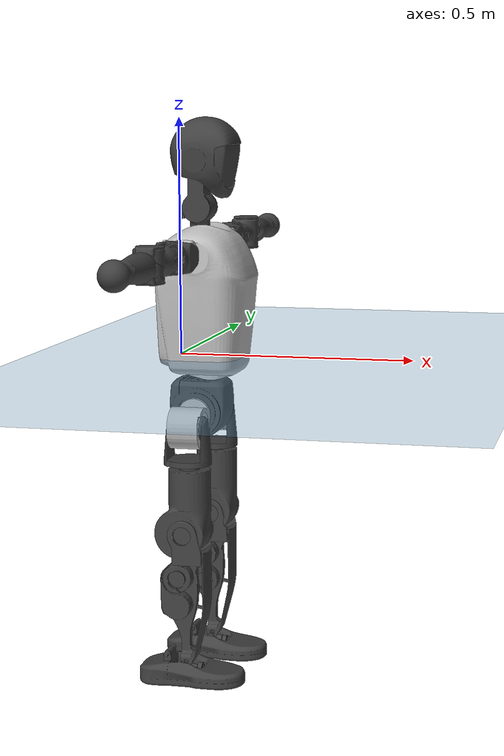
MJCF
<mujoco model="T1">
  <compiler angle="radian" assetdir="assets" balanceinertia="true" inertiafromgeom="false"/>

  <option timestep="0.005" density="1.2" viscosity="2e-05"/>

  <size nkey="1"/>

  <visual>
    <quality shadowsize="8192"/>
    <map shadowclip="0.5"/>
  </visual>

  <default>
    <default class="/">
      <joint armature="0.01" damping="0.01" frictionloss="0.1"/>
      <geom contype="0" conaffinity="0" group="1" solref="-1000 -80"/>
      <site size="0.01 0.005 0.005" group="5"/>
      <general forcelimited="true" biastype="affine" gainprm="25" biasprm="0 -25 -0.6"/>
      <default class="t1">
        <geom rgba="0.25 0.25 0.25 1"/>
        <default class="visual">
          <geom type="mesh" group="2"/>
        </default>
        <default class="collision">
          <geom group="3"/>
        </default>
        <default class="foot">
          <geom size="0.1115 0.05 0.015" type="box" condim="6" group="4" priority="1" solimp="0.015 1 0.015"/>
        </default>
        <default class="reward_collision_sphere">
          <geom group="5" rgba="1 0 0 1"/>
        </default>
      </default>
    </default>
  </default>

  <asset>
    <texture type="skybox" colorspace="auto" name="//unnamed_texture_0" builtin="gradient" rgb1="0.95 0.95 0.95" rgb2="0.95 0.95 0.95" width="100" height="600"/>
    <texture type="2d" colorspace="auto" name="texplane" builtin="checker" rgb1="0.345 0.575 0.748" rgb2="0.345 0.575 0.748" markrgb="1 1 1" width="512" height="512"/>
    <material name="MatPlane" class="/" texture="texplane" texuniform="true" texrepeat="2 2" specular="0.9"/>
    <mesh name="Trunk" class="/" file="Trunk.stl"/>
    <mesh name="H1" class="/" file="H1.stl"/>
    <mesh name="H2" class="/" file="H2.stl"/>
    <mesh name="AL1" class="/" file="AL1.stl"/>
    <mesh name="AL2" class="/" file="AL2.stl"/>
    <mesh name="AL3" class="/" file="AL3.stl"/>
    <mesh name="left_hand_link" class="/" file="left_hand_link.stl"/>
    <mesh name="AR1" class="/" file="AR1.stl"/>
    <mesh name="AR2" class="/" file="AR2.stl"/>
    <mesh name="AR3" class="/" file="AR3.stl"/>
    <mesh name="right_hand_link" class="/" file="right_hand_link.stl"/>
    <mesh name="Waist" class="/" file="Waist.stl"/>
    <mesh name="Hip_Pitch_Left" class="/" file="Hip_Pitch_Left.stl"/>
    <mesh name="Hip_Roll_Left" class="/" file="Hip_Roll_Left.stl"/>
    <mesh name="Hip_Yaw_Left" class="/" file="Hip_Yaw_Left.stl"/>
    <mesh name="Shank_Left" class="/" file="Shank_Left.stl"/>
    <mesh name="Ankle_Cross_Left" class="/" file="Ankle_Cross_Left.stl"/>
    <mesh name="left_foot_link" class="/" file="left_foot_link.stl"/>
    <mesh name="Hip_Pitch_Right" class="/" file="Hip_Pitch_Right.stl"/>
    <mesh name="Hip_Roll_Right" class="/" file="Hip_Roll_Right.stl"/>
    <mesh name="Hip_Yaw_Right" class="/" file="Hip_Yaw_Right.stl"/>
    <mesh name="Shank_Right" class="/" file="Shank_Right.stl"/>
    <mesh name="Ankle_Cross_Right" class="/" file="Ankle_Cross_Right.stl"/>
    <mesh name="right_foot_link" class="/" file="right_foot_link.stl"/>
  </asset>

  <worldbody>
    <geom name="floor" class="/" size="100 100 0.125" type="plane" group="0" material="MatPlane"/>
    <light name="toplight_shadow" class="/" pos="0 0 5" dir="0.0990148 0.0990148 -0.990148" type="directional" ambient="0.04 0.04 0.04" diffuse="0.55 0.55 0.55" specular="0.12 0.12 0.12"/>
    <light name="toplight_fill" class="/" pos="0 0 5" dir="0.0990148 0.0990148 -0.990148" type="directional" castshadow="false" ambient="0.04 0.04 0.04" diffuse="0.3 0.3 0.3" specular="0.08 0.08 0.08"/>
    <body name="trunk" childclass="t1" pos="0.00278675 0.000390326 -0.000124092" quat="1 8.08668e-05 0.000191406 -0.000138581">
      <inertial pos="0.0374393 -0.000884585 0.106179" quat="0.999962 0.00331245 -0.00699199 0.00395" mass="8.95586" diaginertia="0.0142543 0.0735269 0.0650047"/>
      <joint name="//unnamed_joint_0" type="free" armature="0" damping="0" frictionloss="0"/>
      <geom name="//unnamed_geom_1" class="visual" rgba="0.76 0.76 0.76 1" mesh="Trunk"/>
      <geom name="//unnamed_geom_2" class="collision" size="0.0677132 0.0902843 0.135426" pos="0.0411145 0 0.123817" type="box"/>
      <geom name="//unnamed_geom_3" class="reward_collision_sphere" size="0.103827" pos="0.0411145 0 0.103181"/>
      <geom name="//unnamed_geom_4" class="reward_collision_sphere" size="0.0135426" pos="0.0411145 0.084276 0"/>
      <geom name="//unnamed_geom_5" class="reward_collision_sphere" size="0.0135426" pos="0.0411145 -0.084276 0"/>
      <geom name="//unnamed_geom_6" class="reward_collision_sphere" size="0.0135426" pos="0.0411145 0.106089 0.185725"/>
      <geom name="//unnamed_geom_7" class="reward_collision_sphere" size="0.0135426" pos="0.0411145 -0.106089 0.185725"/>
      <site name="imu" pos="-0.0105225 -0.00936932 0.0141478" size="0.00902843"/>
      <camera name="track" pos="0 -1.98296 0" quat="0.707107 0.707107 0 0" mode="trackcom"/>
      <camera name="ego_camera" pos="0.0835994 0 0.433358" quat="-0.5 -0.5 0.5 0.5"/>
      <body name="H1" pos="0.0412053 -0.00216022 0.249091" quat="1 0.000127672 -0.000193502 2.87522e-05">
        <inertial pos="-0.00357936 -0.00176355 0.0569873" quat="0.761016 -0.0223134 0.00316018 0.648342" mass="0.337783" diaginertia="3.62575e-05 0.000209362 0.000174613"/>
        <joint name="AAHead_yaw" pos="0 0 0" axis="-0.0058954 -0.0101434 0.999931" stiffness="6.68311e-05" range="-1.55916 1.59129" armature="0.0100123" damping="0.0083941" frictionloss="0.101534"/>
        <geom name="//unnamed_geom_8" class="visual" mesh="H1"/>
        <body name="H2" pos="-6.58212e-06 -9.84281e-05 0.0637505" quat="0.999999 0.00119687 0.000426919 -0.000509955">
          <inertial pos="0.003968 -0.000591553 0.101651" quat="0.988584 0.105473 -0.0737404 -0.0783503" mass="0.476593" diaginertia="0.000298947 0.00183628 0.00205982"/>
          <joint name="Head_pitch" pos="0 0 0" axis="0.000236777 -1 -6.82933e-05" range="-1.21381 0.351886" armature="0.010185" damping="0.00461592" frictionloss="0.0892735"/>
          <geom name="//unnamed_geom_9" class="visual" mesh="H2"/>
          <geom name="//unnamed_geom_10" class="collision" size="0.0722274" pos="0.00685241 0 0.113499"/>
          <geom name="//unnamed_geom_11" class="reward_collision_sphere" size="0.0812559" pos="0.0137048 0 0.103181"/>
        </body>
      </body>
      <body name="AL1" pos="0.0429009 0.107972 0.228957" quat="1 6.4187e-05 0.000559573 0.000173708">
        <inertial pos="-0.00214237 0.0466795 -0.00275785" quat="0.505104 0.495431 -0.503323 0.496069" mass="0.413674" diaginertia="0.000220056 0.00131877 0.000353401"/>
        <joint name="Left_Shoulder_Pitch" pos="0 0 0" axis="0.00631702 0.999907 -0.0120599" stiffness="0.0137702" range="-3.26538 1.22293" armature="0.0102052" damping="0.0128743" frictionloss="0.0775211"/>
        <geom name="//unnamed_geom_12" class="visual" rgba="0.76 0.76 0.76 1" mesh="AL1"/>
        <body name="AL2" pos="0.000282506 0.0497614 0.0030683" quat="1 0.000426243 -3.76217e-05 -0.000880805">
          <inertial pos="0.00201352 0.0372909 0.00229792" quat="0.488054 0.511476 -0.487736 0.512161" mass="0.116797" diaginertia="6.44347e-05 0.000347073 0.000205118"/>
          <joint name="Left_Shoulder_Roll" pos="0 0 0" axis="-0.999989 -0.0046265 -0.000785716" range="-1.51657 1.68814" armature="0.00886732" damping="0.0147507" frictionloss="0.0949312"/>
          <geom name="//unnamed_geom_13" class="visual" mesh="AL2"/>
          <body name="AL3" pos="0.00249688 0.0605516 -8.59771e-05" quat="0.999999 0.000384064 0.00106898 -0.00100838">
            <inertial pos="-0.000994054 0.0845441 0.00270125" quat="0.713588 0.700504 0.000500473 -0.00925246" mass="0.762238" diaginertia="0.00202309 0.0122981 0.00073199"/>
            <joint name="Left_Elbow_Pitch" pos="0 0 0" axis="0.00036406 -0.999985 -0.00542475" range="-2.25144 2.32131" armature="0.00781496" damping="0" frictionloss="0.0905654"/>
            <geom name="//unnamed_geom_14" class="visual" mesh="AL3"/>
            <geom name="//unnamed_geom_15" class="collision" size="0.0270853 0.0677132" pos="0 0.0495741 0" quat="0.707105 0.707108 0 0" type="cylinder"/>
            <geom name="//unnamed_geom_16" class="reward_collision_sphere" size="0.0325023"/>
            <body name="left_hand_link" pos="0.00256241 0.14606 0.00127322" quat="0.999999 0.000456421 0.000327231 0.00129006">
              <inertial pos="0.00128492 0.106108 0.00130534" quat="0.711747 0.702423 0.0041571 -0.00112756" mass="0.235397" diaginertia="0.00125876 0.00789609 0.000247241"/>
              <joint name="Left_Elbow_Yaw" pos="0 0 0" axis="-0.00923336 -0.00345194 0.999951" stiffness="0.00459347" range="-2.39332 -0.0539247" armature="0.0103797" damping="0.0265819" frictionloss="0.102797"/>
              <geom name="//unnamed_geom_17" class="visual" mesh="left_hand_link"/>
              <geom name="//unnamed_geom_18" class="collision" size="0.0270853 0.0789988" pos="0 0.128893 0" quat="0.707105 0.707108 0 0" type="cylinder"/>
              <geom name="//unnamed_geom_19" class="reward_collision_sphere" size="0.0451421"/>
              <geom name="//unnamed_geom_20" class="reward_collision_sphere" size="0.0315995" pos="0 0.109063 0"/>
              <geom name="//unnamed_geom_21" class="reward_collision_sphere" size="0.0315995" pos="0 0.213169 0"/>
            </body>
          </body>
        </body>
      </body>
      <body name="AR1" pos="0.0384144 -0.107138 0.224854" quat="0.999999 -0.000662487 0.000832058 -0.00109754">
        <inertial pos="0.00132421 -0.0440414 -0.000327829" quat="0.504429 0.495086 -0.504715 0.495686" mass="0.394154" diaginertia="0.000202812 0.00122779 0.000343815"/>
        <joint name="Right_Shoulder_Pitch" pos="0 0 0" axis="0.00349317 -0.999989 -0.00316499" stiffness="0.0144856" range="-1.24291 3.32722" armature="0.0101686" damping="0.00140686" frictionloss="0.0785173"/>
        <geom name="//unnamed_geom_22" class="visual" rgba="0.76 0.76 0.76 1" mesh="AR1"/>
        <body name="AR2" pos="-0.000483468 -0.0433644 -0.0024802" quat="1 0.000135242 -9.64834e-05 0.000527706">
          <inertial pos="-0.000110463 -0.0348487 -0.00191969" quat="0.510478 0.484322 -0.514943 0.489569" mass="0.122265" diaginertia="6.26279e-05 0.000334324 0.000218606"/>
          <joint name="Right_Shoulder_Roll" pos="0 0 0" axis="-0.999748 0.0187526 -0.0123189" range="-1.70642 1.58814" armature="0.00985842" damping="0.0179838" frictionloss="0.0930533"/>
          <geom name="//unnamed_geom_23" class="visual" mesh="AR2"/>
          <body name="AR3" pos="0.000492397 -0.0575237 0.000834207" quat="1 -0.000114852 -0.000382249 8.91622e-05">
            <inertial pos="-0.0024654 -0.0834122 7.24609e-05" quat="0.704881 0.709231 -0.0108027 -0.00420495" mass="0.755151" diaginertia="0.00196619 0.012338 0.000748285"/>
            <joint name="Right_Elbow_Pitch" pos="0 0 0" axis="-0.00559835 0.999934 0.00998807" range="-2.27111 2.21182" armature="0.00883294" damping="0.00563166" frictionloss="0.0804599"/>
            <geom name="//unnamed_geom_24" class="visual" mesh="AR3"/>
            <geom name="//unnamed_geom_25" class="collision" size="0.0270853 0.0677132" pos="0 -0.0495741 0" quat="0.707105 0.707108 0 0" type="cylinder"/>
            <geom name="//unnamed_geom_26" class="reward_collision_sphere" size="0.0325023"/>
            <body name="right_hand_link" pos="0.00169747 -0.143077 -0.00074409" quat="1 0.000204722 -3.7586e-05 -0.000118415">
              <inertial pos="-0.0010547 -0.108043 0.00328645" quat="0.706793 0.70742 0.000788133 -0.000156773" mass="0.242737" diaginertia="0.00124511 0.0076371 0.000247761"/>
              <joint name="Right_Elbow_Yaw" pos="0 0 0" axis="-0.000451826 -0.000596472 1" stiffness="0.0113436" range="0.0541006 2.4144" armature="0.00910703" damping="0" frictionloss="0.0795452"/>
              <geom name="//unnamed_geom_27" class="visual" mesh="right_hand_link"/>
              <geom name="//unnamed_geom_28" class="collision" size="0.0270853 0.0789988" pos="0 -0.128893 0" quat="0.707105 0.707108 0 0" type="cylinder"/>
              <geom name="//unnamed_geom_29" class="reward_collision_sphere" size="0.0451421"/>
              <geom name="//unnamed_geom_30" class="reward_collision_sphere" size="0.0315995" pos="0 -0.109063 0"/>
              <geom name="//unnamed_geom_31" class="reward_collision_sphere" size="0.0315995" pos="0 -0.213169 0"/>
            </body>
          </body>
        </body>
      </body>
      <body name="Waist" pos="0.0421344 -0.0014397 -0.118273" quat="1 0.000146292 -6.59518e-05 0.000268493">
        <inertial pos="0.00226752 -0.000558333 0.00817017" quat="0.982062 -0.00903112 -0.188269 0.00530308" mass="1.84503" diaginertia="0.000831857 0.00510513 0.00568519"/>
        <joint name="Waist" pos="0 0 0" axis="-0.011687 -0.0105571 0.999876" stiffness="0.00279375" range="-1.62239 1.51627" armature="0.00925116" damping="0.0159629" frictionloss="0.0794808"/>
        <geom name="//unnamed_geom_32" class="visual" mesh="Waist"/>
        <body name="Hip_Pitch_Left" pos="-0.000463283 0.104425 -0.00129768" quat="1 2.19883e-05 0.000414852 0.000258935">
          <inertial pos="0.00151453 -0.010269 -0.0177078" quat="0.976901 0.212991 0.0162272 -0.00604205" mass="0.762047" diaginertia="0.000266786 0.00146345 0.00152458"/>
          <joint name="Left_Hip_Pitch" pos="0 0 0" axis="-0.0121008 0.999927 0.000121724" stiffness="0.0111745" range="-1.82277 1.56714" armature="0.0101566" damping="0.021857" frictionloss="0.0900289"/>
          <geom name="//unnamed_geom_33" class="visual" rgba="0.76 0.76 0.76 1" mesh="Hip_Pitch_Left"/>
          <body name="Hip_Roll_Left" pos="0.00237844 -0.00173724 -0.0218345" quat="0.999999 -0.000262748 0.00022606 -0.00127598">
            <inertial pos="0.00414923 -0.00076583 -0.0552872" quat="0.708706 -0.00633545 -0.00540421 0.705454" mass="0.267189" diaginertia="0.000252053 0.00141752 0.000582969"/>
            <joint name="Left_Hip_Roll" pos="0 0 0" axis="-0.999912 0.00539627 -0.0120796" stiffness="0.00437482" range="-1.52512 0.226347" armature="0.00785543" damping="0" frictionloss="0.0825291"/>
            <geom name="//unnamed_geom_34" class="visual" mesh="Hip_Roll_Left"/>
            <geom name="//unnamed_geom_35" class="reward_collision_sphere" size="0.0496564"/>
            <body name="Hip_Yaw_Left" pos="0.00309402 -0.00302765 -0.082602" quat="0.999999 -0.000105494 -0.00046921 0.0011575">
              <inertial pos="-0.00667863 -0.00129046 -0.0932836" quat="0.696296 -0.0350672 -0.0311181 0.716222" mass="1.61592" diaginertia="0.00402395 0.0243382 0.00301975"/>
              <joint name="Left_Hip_Yaw" pos="0 0 0" axis="-0.00478607 -0.00513837 -0.999975" range="-0.967481 1.05918" armature="0.00906361" damping="0.0063564" frictionloss="0.102543"/>
              <geom name="//unnamed_geom_36" class="visual" mesh="Hip_Yaw_Left"/>
              <geom name="//unnamed_geom_37" class="collision" size="0.0451421 0.0722274" type="cylinder"/>
              <body name="Shank_Left" pos="-0.00948764 0.00220318 -0.140429" quat="1 0.000126135 -1.68328e-05 -9.54361e-05">
                <inertial pos="-0.00596565 0.00119644 -0.127362" quat="0.996977 -0.000788924 -0.0293879 0.0719221" mass="1.22662" diaginertia="0.00522244 0.0335515 0.00224238"/>
                <joint name="Left_Knee_Pitch" pos="0 0 0" axis="0.00312576 0.999913 0.0128016" range="0.0062263 2.3978" armature="0.00772934" damping="0.0123422" frictionloss="0.099662"/>
                <geom name="//unnamed_geom_38" class="visual" mesh="Shank_Left"/>
                <geom name="//unnamed_geom_39" class="collision" size="0.0451421 0.0677132" pos="0 0 -0.123817" type="cylinder"/>
                <geom name="//unnamed_geom_40" class="reward_collision_sphere" size="0.0586848"/>
                <body name="Ankle_Cross_Left" pos="-0.0025911 -0.00130438 -0.287805" quat="1 8.18532e-05 -0.000338974 0.000356393">
                  <inertial pos="-0.0018952 -7.91661e-05 -0.00722922" quat="0.443196 0.554193 0.546946 0.444182" mass="0.055282" diaginertia="4.63937e-06 2.53824e-05 1.36307e-05"/>
                  <joint name="Left_Ankle_Pitch" pos="0 0 0" axis="-0.0125176 0.999921 -0.000915123" range="-0.866739 0.293405" armature="0.00990164" damping="0.00390312" frictionloss="0.0809138"/>
                  <geom name="//unnamed_geom_41" class="visual" mesh="Ankle_Cross_Left"/>
                  <body name="left_foot_link" pos="0.00148363 -0.0020875 -0.0148534" quat="1 -4.07097e-05 -3.72531e-05 -1.27365e-05">
                    <inertial pos="-0.00207106 0.00275142 -0.00932988" quat="0.00294029 0.622593 0.00221021 0.782537" mass="0.500013" diaginertia="0.000404389 0.00226088 0.00244091"/>
                    <joint name="Left_Ankle_Roll" pos="0 0 0" axis="-0.999998 0.000340669 0.00205781" range="-0.387647 0.396316" armature="0.00900301" damping="0.00642727" frictionloss="0.0940342"/>
                    <geom name="//unnamed_geom_42" class="visual" mesh="left_foot_link"/>
                    <geom name="left_foot" class="foot" size="0.0989676 0.0450946 0.0126082" pos="0.00685241 0 -0.0154771"/>
                    <geom name="//unnamed_geom_44" class="reward_collision_sphere" size="0.0469478" pos="0.00685241 0 -0.0154771"/>
                    <geom name="//unnamed_geom_45" class="reward_collision_sphere" size="0.0270853" pos="0.0650979 -0.0228041 -0.0154771"/>
                    <geom name="//unnamed_geom_46" class="reward_collision_sphere" size="0.0270853" pos="-0.0479669 -0.0228041 -0.0154771"/>
                    <site name="left_foot" class="foot" pos="0.00685241 0 -0.0154771" size="0.00902843"/>
                  </body>
                </body>
              </body>
            </body>
          </body>
        </body>
        <body name="Hip_Pitch_Right" pos="-0.0020174 -0.105356 -0.00260516" quat="1 0.000395697 -0.000244294 0.000668905">
          <inertial pos="0.00116709 0.0076361 -0.0212424" quat="0.97419 -0.225118 0.0162702 -0.00343817" mass="0.740797" diaginertia="0.000265705 0.00143984 0.00149821"/>
          <joint name="Right_Hip_Pitch" pos="0 0 0" axis="0.00812133 -0.999963 0.00265887" range="-1.59521 1.84022" armature="0.00849598" damping="0.0214359" frictionloss="0.0803678"/>
          <geom name="//unnamed_geom_47" class="visual" rgba="0.76 0.76 0.76 1" mesh="Hip_Pitch_Right"/>
          <body name="Hip_Roll_Right" pos="0.00192308 -0.000270327 -0.0197214" quat="1 8.96074e-06 0.000249829 0.000311041">
            <inertial pos="0.000367638 -0.00333244 -0.0526813" quat="0.707228 -0.00872821 -0.00306517 0.706925" mass="0.273536" diaginertia="0.000253474 0.00137296 0.000598194"/>
            <joint name="Right_Hip_Roll" pos="0 0 0" axis="-0.999944 0.0105522 -0.000483095" range="-0.194668 1.56717" armature="0.00765563" damping="0.00397979" frictionloss="0.0887873"/>
            <geom name="//unnamed_geom_48" class="visual" mesh="Hip_Roll_Right"/>
            <geom name="//unnamed_geom_49" class="reward_collision_sphere" size="0.0496564"/>
            <body name="Hip_Yaw_Right" pos="0.000257067 0.00165918 -0.0873744" quat="1 1.20593e-05 -0.000464903 -0.00077347">
              <inertial pos="-0.00212597 0.00180736 -0.0949271" quat="0.715496 -0.0384939 -0.0317226 0.696834" mass="1.59968" diaginertia="0.00392257 0.0236184 0.00299732"/>
              <joint name="Right_Hip_Yaw" pos="0 0 0" axis="0.00314696 0.0020262 -0.999993" range="-1.02256 1.01326" armature="0.00935072" damping="0.00731336" frictionloss="0.0900588"/>
              <geom name="//unnamed_geom_50" class="visual" mesh="Hip_Yaw_Right"/>
              <geom name="//unnamed_geom_51" class="collision" size="0.0451421 0.0722274" type="cylinder"/>
              <body name="Shank_Right" pos="-0.0066428 -0.00193517 -0.135635" quat="1 -0.000156094 9.47412e-05 0.000132328">
                <inertial pos="-0.00566048 0.000640507 -0.128948" quat="0.998737 -0.00731734 -0.0263869 -0.0421211" mass="1.35062" diaginertia="0.00509234 0.0320369 0.00221675"/>
                <joint name="Right_Knee_Pitch" pos="0 0 0" axis="-0.0136265 -0.999897 0.00449163" range="-2.39176 -0.00951384" armature="0.00919776" damping="0.0131492" frictionloss="0.0809227"/>
                <geom name="//unnamed_geom_52" class="visual" mesh="Shank_Right"/>
                <geom name="//unnamed_geom_53" class="collision" size="0.0451421 0.0677132" pos="0 0 -0.123817" type="cylinder"/>
                <geom name="//unnamed_geom_54" class="reward_collision_sphere" size="0.0586848"/>
                <body name="Ankle_Cross_Right" pos="-0.0003865 -0.000968988 -0.287208" quat="1 -0.000285953 -0.000288858 -4.35861e-05">
                  <inertial pos="-0.00310845 -0.00270353 -0.0076825" quat="0.442033 0.558616 0.549566 0.4365" mass="0.0533319" diaginertia="4.3613e-06 2.33136e-05 1.29265e-05"/>
                  <joint name="Right_Ankle_Pitch" pos="0 0 0" axis="-0.0122332 -0.99992 -0.00309755" range="-0.30263 0.871232" armature="0.0103313" damping="0.00193572" frictionloss="0.0917047"/>
                  <geom name="//unnamed_geom_55" class="visual" mesh="Ankle_Cross_Right"/>
                  <body name="right_foot_link" pos="0.00154767 -0.00104636 -0.00977058" quat="1 -3.12199e-05 2.57871e-05 3.59343e-06">
                    <inertial pos="-0.000155508 0.00124309 -0.00694361" quat="-0.0101664 0.62026 -0.00870085 0.784282" mass="0.506472" diaginertia="0.000421977 0.00232269 0.00258589"/>
                    <joint name="Right_Ankle_Roll" pos="0 0 0" axis="-1 -0.000464329 0.000274206" range="-0.432457 0.384733" armature="0.00921025" damping="0.0138034" frictionloss="0.0776602"/>
                    <geom name="//unnamed_geom_56" class="visual" mesh="right_foot_link"/>
                    <geom name="right_foot" class="foot" size="0.112604 0.0469351 0.0145713" pos="0.00685241 0 -0.0154771"/>
                    <geom name="//unnamed_geom_58" class="reward_collision_sphere" size="0.0361137"/>
                    <geom name="//unnamed_geom_59" class="reward_collision_sphere" size="0.0270853" pos="0.00685241 0 -0.0154771"/>
                    <geom name="//unnamed_geom_60" class="reward_collision_sphere" size="0.0270853" pos="0.0650979 0.0228041 -0.0154771"/>
                    <geom name="//unnamed_geom_61" class="reward_collision_sphere" size="0.0270853" pos="-0.0479669 0.0228041 -0.0154771"/>
                    <site name="right_foot" class="foot" pos="0.00685241 0 -0.0154771" size="0.00902843"/>
                  </body>
                </body>
              </body>
            </body>
          </body>
        </body>
      </body>
    </body>
  </worldbody>

  <contact>
    <pair class="/" geom1="floor" geom2="left_foot" name="//unnamed_contact_0"/>
    <pair class="/" geom1="floor" geom2="right_foot" name="//unnamed_contact_1"/>
  </contact>

  <actuator>
    <general name="AAHead_yaw" class="/" joint="AAHead_yaw" forcerange="-6.98997 6.98997" gainprm="23.8829" biasprm="0 -23.8829 -0.495527"/>
    <general name="Head_pitch" class="/" joint="Head_pitch" forcerange="-6.24247 6.24247" gainprm="23.8829" biasprm="0 -23.8829 -0.495527"/>
    <general name="Left_Shoulder_Pitch" class="/" joint="Left_Shoulder_Pitch" forcerange="-15.5275 15.5275" gainprm="23.8829" biasprm="0 -23.8829 -0.495527"/>
    <general name="Left_Shoulder_Roll" class="/" joint="Left_Shoulder_Roll" forcerange="-16.6296 16.6296" gainprm="23.8829" biasprm="0 -23.8829 -0.495527"/>
    <general name="Left_Elbow_Pitch" class="/" joint="Left_Elbow_Pitch" forcerange="-17.9967 17.9967" gainprm="23.8829" biasprm="0 -23.8829 -0.495527"/>
    <general name="Left_Elbow_Yaw" class="/" joint="Left_Elbow_Yaw" forcerange="-17.9248 17.9248" gainprm="23.8829" biasprm="0 -23.8829 -0.495527"/>
    <general name="Right_Shoulder_Pitch" class="/" joint="Right_Shoulder_Pitch" forcerange="-15.1615 15.1615" gainprm="23.8829" biasprm="0 -23.8829 -0.495527"/>
    <general name="Right_Shoulder_Roll" class="/" joint="Right_Shoulder_Roll" forcerange="-16.1359 16.1359" gainprm="23.8829" biasprm="0 -23.8829 -0.495527"/>
    <general name="Right_Elbow_Pitch" class="/" joint="Right_Elbow_Pitch" forcerange="-16.1693 16.1693" gainprm="23.8829" biasprm="0 -23.8829 -0.495527"/>
    <general name="Right_Elbow_Yaw" class="/" joint="Right_Elbow_Yaw" forcerange="-16.3069 16.3069" gainprm="23.8829" biasprm="0 -23.8829 -0.495527"/>
    <general name="Waist" class="/" joint="Waist" forcerange="-27.8079 27.8079" gainprm="23.8829" biasprm="0 -23.8829 -0.495527"/>
    <general name="Left_Hip_Pitch" class="/" joint="Left_Hip_Pitch" forcerange="-40.8728 40.8728" gainprm="23.8829" biasprm="0 -23.8829 -0.495527"/>
    <general name="Left_Hip_Roll" class="/" joint="Left_Hip_Roll" forcerange="-26.5572 26.5572" gainprm="23.8829" biasprm="0 -23.8829 -0.495527"/>
    <general name="Left_Hip_Yaw" class="/" joint="Left_Hip_Yaw" forcerange="-24.2581 24.2581" gainprm="23.8829" biasprm="0 -23.8829 -0.495527"/>
    <general name="Left_Knee_Pitch" class="/" joint="Left_Knee_Pitch" forcerange="-58.1577 58.1577" gainprm="23.8829" biasprm="0 -23.8829 -0.495527"/>
    <general name="Left_Ankle_Pitch" class="/" joint="Left_Ankle_Pitch" forcerange="-16.45 16.45" gainprm="23.8829" biasprm="0 -23.8829 -0.495527"/>
    <general name="Left_Ankle_Roll" class="/" joint="Left_Ankle_Roll" forcerange="-13.8595 13.8595" gainprm="23.8829" biasprm="0 -23.8829 -0.495527"/>
    <general name="Right_Hip_Pitch" class="/" joint="Right_Hip_Pitch" forcerange="-42.148 42.148" gainprm="23.8829" biasprm="0 -23.8829 -0.495527"/>
    <general name="Right_Hip_Roll" class="/" joint="Right_Hip_Roll" forcerange="-27.741 27.741" gainprm="23.8829" biasprm="0 -23.8829 -0.495527"/>
    <general name="Right_Hip_Yaw" class="/" joint="Right_Hip_Yaw" forcerange="-25.9574 25.9574" gainprm="23.8829" biasprm="0 -23.8829 -0.495527"/>
    <general name="Right_Knee_Pitch" class="/" joint="Right_Knee_Pitch" forcerange="-48.5421 48.5421" gainprm="23.8829" biasprm="0 -23.8829 -0.495527"/>
    <general name="Right_Ankle_Pitch" class="/" joint="Right_Ankle_Pitch" forcerange="-16.3708 16.3708" gainprm="23.8829" biasprm="0 -23.8829 -0.495527"/>
    <general name="Right_Ankle_Roll" class="/" joint="Right_Ankle_Roll" forcerange="-14.0968 14.0968" gainprm="23.8829" biasprm="0 -23.8829 -0.495527"/>
  </actuator>

  <sensor>
    <gyro site="imu" name="imu_angular_velocity"/>
    <velocimeter site="imu" name="imu_linear_velocity"/>
    <framelinvel objtype="site" objname="left_foot" name="left_foot_global_linear_velocity"/>
    <framelinvel objtype="site" objname="right_foot" name="right_foot_global_linear_velocity"/>
  </sensor>

  <keyframe>
    <key name="home" qpos="0 0 0.6385 1 0 0 0 0 0 0 1.4 0 -0.4 0 -1.4 0 0.4 0 -0.4 0 0 0.8 -0.4 0 0.4 0 0 -0.8 0.4 0"/>
  </keyframe>
</mujoco>
